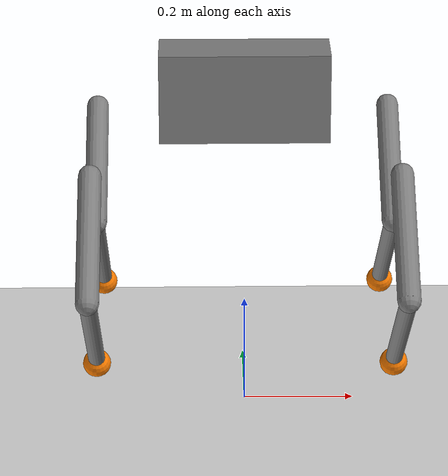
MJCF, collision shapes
<mujoco model="kutta scene">
  <!-- Include the robot model -->
  <include file="q1_mjx_feetonly.xml"/>

  <statistic center="0 0 0.3" extent="1.5" meansize="0.05"/>

  <visual>
    <headlight diffuse="0.8 0.8 0.8" ambient="0.2 0.2 0.2" specular="1 1 1"/>
    <rgba force="1 0 0 1"/>
    <global azimuth="120" elevation="-20"/>
    <map force="0.01"/>
    <scale forcewidth="0.3" contactwidth="0.5" contactheight="0.2"/>
    <quality shadowsize="8192"/>
  </visual>

  <asset>
    <texture type="skybox" builtin="gradient" rgb1="0.6 0.8 1.0" rgb2="0.2 0.4 0.8" width="800" height="800"/>
    <texture type="2d" name="groundplane" builtin="checker" mark="edge" rgb1="0.9 0.9 0.9" rgb2="0.8 0.8 0.8" markrgb="0.2 0.2 0.2" width="300" height="300"/>
    <material name="groundplane" texture="groundplane" texuniform="true" texrepeat="10 10" reflectance="0.1"/>
  </asset>

  <worldbody>
    <light name="spotlight" mode="targetbodycom" target="trunk" pos="3 0 4"/>
    <geom name="floor" size="0 0 0.05" type="plane" material="groundplane" contype="1" conaffinity="1" condim="3" friction="1.0 0.005 0.0001"/>
  </worldbody>

  <keyframe>
    <key name="home" qpos="0 0 0.6 0.7071 -0.7071 0 0 0.45 0.15 0.45 0.15 0.25 0.15 0.25 0.15" ctrl="0.45 0.15 0.45 0.15 0.25 0.15 0.25 0.15"/>
  </keyframe>
</mujoco>

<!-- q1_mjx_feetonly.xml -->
<mujoco model="kutta">
  <compiler angle="radian" meshdir="assets/" autolimits="true"/>

  <option iterations="1" ls_iterations="5" timestep="0.004" integrator="Euler">
    <flag eulerdamp="disable"/>
  </option>

  <default>
    <default class="kutta">
      <!-- This globally disables collisions for all parts except feet -->
      <geom condim="3" contype="0" conaffinity="0"/>
      <joint axis="0 0 1" armature="0.005" damping="0.5"/>
      <position forcerange="-23.7 23.7" inheritrange="1" kp="35"/>
      <default class="thigh">
        <joint range="-0.9 0.67" frictionloss="0.3"/>
      </default>
      <default class="calf">
        <joint range="-0.5 0.5" frictionloss="1.0"/>
        <position forcerange="-35.55 35.55"/>
      </default>
      <default class="visual">
        <geom type="mesh" contype="0" conaffinity="0" group="2" material="dark"/>
      </default>
      <default class="collision">
        <!-- These are disabled collision geometries (contype=0, conaffinity=0) -->
        <geom group="3" type="capsule" contype="0" conaffinity="0"/>
        <default class="trunk">
          <geom size="0.15 0.08 0.05" type="box" contype="0" conaffinity="0"/>
        </default>
        <default class="thigh_col_right">
          <geom size="0.02" fromto="0 0 0.055 0 0.245 0.055" type="capsule" contype="0" conaffinity="0" />
        </default>
        <default class="thigh_col_left">
          <geom size="0.02" fromto="0 0 -0.055 0 0.245 -0.055" type="capsule" contype="0" conaffinity="0" />
        </default>
        <default class="calf_col">
          <geom size="0.015" fromto="0 0 0 0 -0.065 0.33" type="capsule" contype="0" conaffinity="0" />
        </default>
        <default class="foot">
          <geom type="sphere" size="0.025" pos="0 -0.065 0.35" solimp="0.9 0.95 0.001" solref="0.004 1" contype="1" conaffinity="1" condim="3"  friction="2.0 0.1 0.01" rgba="1 0.5 0 1" group="0"/>
        </default>
      </default>
    </default>
  </default>

  <asset>
    <material name="dark" rgba="0.2 0.2 0.2 1"/>
    <material name="light" rgba="0.776471 0.756863 0.737255 1"/>
    <material name="blue" rgba="0.792157 0.819608 0.933333 1"/>
    <mesh name="base_link" content_type="model/stl" file="base_link.STL"/>
    <mesh name="left_thigh" content_type="model/stl" file="FL_thigh.STL"/>
    <mesh name="left_calf" content_type="model/stl" file="FL_calf.STL"/>
    <mesh name="right_thigh" content_type="model/stl" file="FR_thigh.STL"/>
    <mesh name="right_calf" content_type="model/stl" file="FR_calf.STL"/>
  </asset>

  <worldbody>
    <body name="trunk" pos="0 0 0.6" quat="0.7071 -0.7071 0 0" childclass="kutta">
      <camera name="track" pos="0.846 -1.3 0.316" xyaxes="0.866 0.500 0.000 -0.171 0.296 0.940" mode="trackcom"/>
      <camera name="top" pos="-1 0 1" xyaxes="0 -1 0 0.7 0 0.7" mode="trackcom"/>
      <camera name="side" pos="0 -1 .3" xyaxes="1 0 0 0 1 2" mode="trackcom"/>
      <camera name="back" pos="-1 0 .3" xyaxes="0 -1 0 1 0 2" mode="trackcom"/>
      <site name="head" pos="0.3 0 0" rgba="1 0 0 1" size="0.02" group="5"/>
      <inertial pos="0 0 0" mass="20.0" diaginertia="0.1 0.1 0.05"/>
      <freejoint/>

      <!-- Visual mesh for trunk -->
      <geom class="visual" mesh="base_link" material="blue"/>
      <!-- Collision geometry for trunk -->
      <geom class="trunk"/>

      <site name="imu" pos="0 0 0" group="5"/>

      <!-- Front Left Leg -->
      <body name="FL_thigh" pos="0.211553 0.09 -0.179" quat="0.634822 -0.31145 -0.634822 0.31145">
        <inertial pos="-0.000817907 0.0310806 -0.0509014" quat="0.393902 0.389492 -0.600379 0.576786" mass="1.55" diaginertia="0.00261662 0.00260068 0.00123196"/>
        <joint class="thigh" name="FL_thigh_joint"/>
        <geom class="visual" mesh="left_thigh" material="light"/>
        <geom class="thigh_col_left"/>
        <body name="FL_calf" pos="0 0.245452 -0.0544472" quat="0.707107 0 0.707107 0">
          <inertial pos="-1.51413e-09 -0.0322977 0.16607" quat="0.703848 0.0678076 -0.0678076 0.703848" mass="0.25" diaginertia="0.000849475 0.000848789 1.70367e-05"/>
          <joint class="calf" name="FL_calf_joint" axis="-1 0 0"/>
          <geom class="visual" mesh="left_calf" material="blue"/>
          <geom class="calf_col"/>
          <geom name="FL" class="foot"/>
          <site name="FL" pos="0 -0.33 0" type="sphere" size="0.03" group="5"/>
        </body>
      </body>

      <!-- Front Right Leg -->
      <body name="FR_thigh" pos="-0.211553 0.09 -0.179" quat="0.635676 -0.309703 -0.635676 0.309703">
        <inertial pos="0.000777694 0.0310806 0.050662" quat="0.378108 0.389847 -0.582841 0.604442" mass="1.55" diaginertia="0.0026164 0.00260097 0.00123189"/>
        <joint class="thigh" name="FR_thigh_joint"/>
        <geom class="visual" mesh="right_thigh" material="light"/>
        <geom class="thigh_col_right"/>
        <body name="FR_calf" pos="0 0.245452 0.0544472" quat="0.707107 0 0.707107 0">
          <inertial pos="-1.51412e-09 -0.0322977 0.16607" quat="0.703848 0.0678076 -0.0678076 0.703848" mass="0.25" diaginertia="0.000849475 0.000848789 1.70367e-05"/>
          <joint class="calf" name="FR_calf_joint" axis="-1 0 0"/>
          <geom class="visual" mesh="right_calf" material="blue"/>
          <geom class="calf_col"/>
          <geom name="FR" class="foot"/>
          <site name="FR" pos="0 -0.33 0" type="sphere" size="0.025" group="5"/>
        </body>
      </body>

      <!-- Rear Left Leg -->
      <body name="RL_thigh" pos="0.211553 0.09 0.179" quat="0.638021 -0.304842 -0.638021 0.304842">
        <inertial pos="-0.000817907 0.0310806 -0.0509014" quat="0.393902 0.389492 -0.600379 0.576786" mass="1.55" diaginertia="0.00261662 0.00260068 0.00123196"/>
        <joint class="thigh" name="RL_thigh_joint"/>
        <geom class="visual" mesh="left_thigh" material="light"/>
        <geom class="thigh_col_left"/>
        <body name="RL_calf" pos="0 0.245452 -0.0544472" quat="0.707107 0 0.707107 0">
          <inertial pos="-1.51413e-09 -0.0322977 0.16607" quat="0.703848 0.0678076 -0.0678076 0.703848" mass="0.25" diaginertia="0.000849475 0.000848789 1.70367e-05"/>
          <joint class="calf" name="RL_calf_joint" axis="-1 0 0"/>
          <geom class="visual" mesh="left_calf" material="blue"/>
          <geom class="calf_col"/>
          <geom name="RL" class="foot"/>
          <site name="RL" pos="0 -0.33 0" type="sphere" size="0.025" group="5"/>
        </body>
      </body>

      <!-- Rear Right Leg -->
      <body name="RR_thigh" pos="-0.211553 0.09 0.179" quat="0.637893 -0.305111 -0.637893 0.305111">
        <inertial pos="0.000777694 0.0310806 0.050662" quat="0.378108 0.389847 -0.582841 0.604442" mass="1.55" diaginertia="0.0026164 0.00260097 0.00123189"/>
        <joint class="thigh" name="RR_thigh_joint"/>
        <geom class="visual" mesh="right_thigh" material="light"/>
        <geom class="thigh_col_right"/>
        <body name="RR_calf" pos="-0 0.245452 0.0544472" quat="0.707107 0 0.707107 0">
          <inertial pos="1.51412e-09 -0.0322977 -0.16607" quat="0.703848 -0.0678076 0.0678076 0.703848" mass="0.25" diaginertia="0.000849475 0.000848789 1.70367e-05"/>
          <joint class="calf" name="RR_calf_joint" axis="-1 0 0"/>
          <geom class="visual" mesh="right_calf" material="blue"/>
          <geom class="calf_col"/>
          <geom name="RR" class="foot"/>
          <site name="RR" pos="0 -0.33 0" type="sphere" size="0.025" group="5"/>
        </body>
      </body>
    </body>
  </worldbody>

  <actuator>
    <position class="thigh" name="FL_thigh" joint="FL_thigh_joint" gear="1" kp="15" kv="1"/>
    <position class="calf" name="FL_calf" joint="FL_calf_joint" gear="1" kp="30" kv="1"/>
    <position class="thigh" name="FR_thigh" joint="FR_thigh_joint" gear="1" kp="15" kv="1"/>
    <position class="calf" name="FR_calf" joint="FR_calf_joint" gear="1" kp="30" kv="1"/>
    <position class="thigh" name="RL_thigh" joint="RL_thigh_joint" gear="1" kp="15" kv="1"/>
    <position class="calf" name="RL_calf" joint="RL_calf_joint" gear="1" kp="30" kv="1"/>
    <position class="thigh" name="RR_thigh" joint="RR_thigh_joint" gear="1" kp="15" kv="1"/>
    <position class="calf" name="RR_calf" joint="RR_calf_joint" gear="1" kp="30" kv="1"/>
  </actuator>

  <sensor>
    <gyro site="imu" name="gyro"/>
    <velocimeter site="imu" name="local_linvel"/>
    <accelerometer site="imu" name="accelerometer"/>
    <framepos objtype="site" objname="imu" name="position"/>
    <framezaxis objtype="site" objname="imu" name="upvector"/>
    <framexaxis objtype="site" objname="imu" name="forwardvector"/>
    <framelinvel objtype="site" objname="imu" name="global_linvel"/>
    <frameangvel objtype="site" objname="imu" name="global_angvel"/>
    <framequat objtype="site" objname="imu" name="orientation"/>
    <framelinvel objtype="site" objname="FL" name="FL_global_linvel"/>
    <framelinvel objtype="site" objname="FR" name="FR_global_linvel"/>
    <framelinvel objtype="site" objname="RL" name="RL_global_linvel"/>
    <framelinvel objtype="site" objname="RR" name="RR_global_linvel"/>
    <framepos objtype="site" objname="FL" name="FL_pos" reftype="site" refname="imu"/>
    <framepos objtype="site" objname="FR" name="FR_pos" reftype="site" refname="imu"/>
    <framepos objtype="site" objname="RL" name="RL_pos" reftype="site" refname="imu"/>
    <framepos objtype="site" objname="RR" name="RR_pos" reftype="site" refname="imu"/>
  </sensor>
</mujoco>
